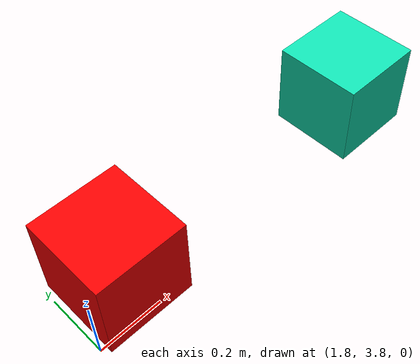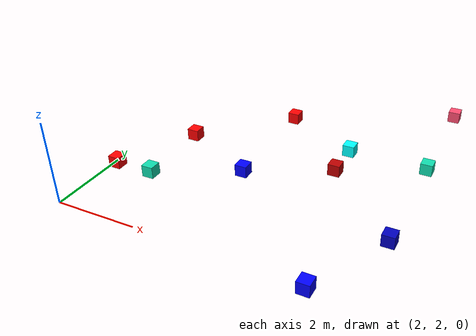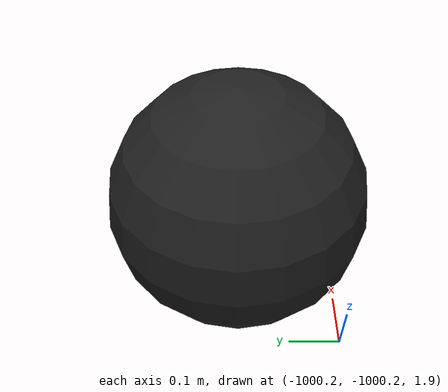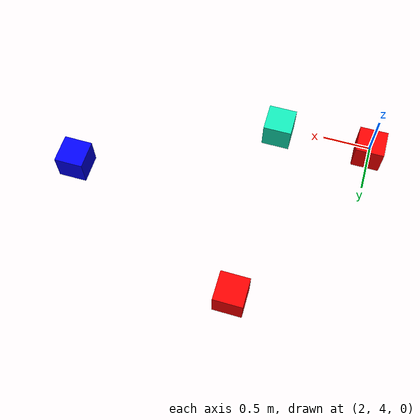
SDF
<sdf version="1.5">
 <world name="default">
  <plugin name="mrs_gazebo_static_transform_republisher_plugin" filename="libMRSGazeboStaticTransformRepublisher.so"/>
  <spherical_coordinates>
   <surface_model>EARTH_WGS84</surface_model>
   <latitude_deg>47.397743</latitude_deg>
   <longitude_deg>8.545594</longitude_deg>
   <elevation>0.0</elevation>
   <heading_deg>0</heading_deg>
  </spherical_coordinates>
  <physics name="default_physics" default="0" type="ode">
   <gravity>0 0 -9.8066</gravity>
   <ode>
    <solver>
     <type>quick</type>
     <iters>10</iters>
     <sor>1.3</sor>
     <use_dynamic_moi_rescaling>0</use_dynamic_moi_rescaling>
    </solver>
    <constraints>
     <cfm>0</cfm>
     <erp>0.2</erp>
     <contact_max_correcting_vel>1000</contact_max_correcting_vel>
     <contact_surface_layer>0.001</contact_surface_layer>
    </constraints>
   </ode>
   <max_step_size>0.004</max_step_size>
   <real_time_factor>1</real_time_factor>
   <real_time_update_rate>250</real_time_update_rate>
   <magnetic_field>6.0e-06 2.3e-05 -4.2e-05</magnetic_field>
  </physics>
  <scene><shadows>false</shadows></scene>
  <light name="sun" type="directional">
   <pose>0 0 1000 0.4 0.2 0</pose>
   <diffuse>1 1 1 1</diffuse>
   <specular>0.6 0.6 0.6 1</specular>
   <direction>0.1 0.1 -0.9</direction>
   <attenuation>
    <range>20</range>
    <constant>0.5</constant>
    <linear>0.01</linear>
    <quadratic>0.001</quadratic>
   </attenuation>
  </light>
  <model name="my_model1">
   <pose>5 5 0 0 0 0</pose>
   <static>true</static>
   <link name="link">
    <inertial>
     <mass>1.0</mass>
     <inertia><ixx>0.083</ixx><ixy>0.0</ixy><ixz>0.0</ixz><iyy>0.083</iyy><iyz>0.0</iyz><izz>0.083</izz></inertia>
    </inertial>
    <collision name="collision"><geometry><box><size>0.3 0.3 0.3</size></box></geometry></collision>
    <visual name="visual">
     <geometry><box><size>0.3 0.3 0.3</size></box></geometry>
     <material>
      <ambient>0 0 1 1</ambient>
      <diffuse>0 0 1 1</diffuse>
      <specular>0.1 0.1 0.1 1</specular>
      <emissive>0 0 0 0</emissive>
     </material>
    </visual>
   </link>
  </model>
  <model name="my_model2">
   <pose>7 7 0 0 0 0</pose>
   <static>true</static>
   <link name="link">
    <inertial>
     <mass>1.0</mass>
     <inertia><ixx>0.083</ixx><ixy>0.0</ixy><ixz>0.0</ixz><iyy>0.083</iyy><iyz>0.0</iyz><izz>0.083</izz></inertia>
    </inertial>
    <collision name="collision"><geometry><box><size>0.3 0.3 0.3</size></box></geometry></collision>
    <visual name="visual">
     <geometry><box><size>0.3 0.3 0.3</size></box></geometry>
     <material>
      <ambient>0 1 1 1</ambient>
      <diffuse>0 1 1 1</diffuse>
      <specular>0.1 0.1 0.1 1</specular>
      <emissive>0 0 0 0</emissive>
     </material>
    </visual>
   </link>
  </model>
  <model name="my_model3">
   <pose>3 4 0 0 0 0</pose>
   <static>true</static>
   <link name="link">
    <inertial>
     <mass>1.0</mass>
     <inertia><ixx>0.083</ixx><ixy>0.0</ixy><ixz>0.0</ixz><iyy>0.083</iyy><iyz>0.0</iyz><izz>0.083</izz></inertia>
    </inertial>
    <collision name="collision"><geometry><box><size>0.3 0.3 0.3</size></box></geometry></collision>
    <visual name="visual">
     <geometry><box><size>0.3 0.3 0.3</size></box></geometry>
     <material>
      <ambient>0.06 0.87 0.69 1</ambient>
      <diffuse>0.06 0.87 0.69 1</diffuse>
      <specular>0.1 0.1 0.1 1</specular>
      <emissive>0 0 0 0</emissive>
     </material>
    </visual>
   </link>
  </model>
  <model name="my_model4">
   <pose>5 8 0 0 0 0</pose>
   <static>true</static>
   <link name="link">
    <inertial>
     <mass>1.0</mass>
     <inertia><ixx>0.083</ixx><ixy>0.0</ixy><ixz>0.0</ixz><iyy>0.083</iyy><iyz>0.0</iyz><izz>0.083</izz></inertia>
    </inertial>
    <collision name="collision"><geometry><box><size>0.3 0.3 0.3</size></box></geometry></collision>
    <visual name="visual">
     <geometry><box><size>0.3 0.3 0.3</size></box></geometry>
     <material>
      <ambient>1 0 0 1</ambient>
      <diffuse>1 0 0 1</diffuse>
      <specular>0.1 0.1 0.1 1</specular>
      <emissive>0 0 0 0</emissive>
     </material>
    </visual>
   </link>
  </model>
  <model name="my_model5">
   <pose>9 10 0 0 0 0</pose>
   <static>true</static>
   <link name="link">
    <inertial>
     <mass>1.0</mass>
     <inertia><ixx>0.083</ixx><ixy>0.0</ixy><ixz>0.0</ixz><iyy>0.083</iyy><iyz>0.0</iyz><izz>0.083</izz></inertia>
    </inertial>
    <collision name="collision"><geometry><box><size>0.3 0.3 0.3</size></box></geometry></collision>
    <visual name="visual">
     <geometry><box><size>0.3 0.3 0.3</size></box></geometry>
     <material>
      <ambient>1 0.3 0.44 1</ambient>
      <diffuse>1 0.3 0.44 1</diffuse>
      <specular>0.1 0.1 0.1 1</specular>
      <emissive>0 0 0 0</emissive>
     </material>
    </visual>
   </link>
  </model>
  <model name="my_model6">
   <pose>7 6 0 0 0 0</pose>
   <static>true</static>
   <link name="link">
    <inertial>
     <mass>1.0</mass>
     <inertia><ixx>0.083</ixx><ixy>0.0</ixy><ixz>0.0</ixz><iyy>0.083</iyy><iyz>0.0</iyz><izz>0.083</izz></inertia>
    </inertial>
    <collision name="collision"><geometry><box><size>0.3 0.3 0.3</size></box></geometry></collision>
    <visual name="visual">
     <geometry><box><size>0.3 0.3 0.3</size></box></geometry>
     <material>
      <ambient>0.75 0 0 1</ambient>
      <diffuse>0.75 0 0 1</diffuse>
      <specular>0.1 0.1 0.1 1</specular>
      <emissive>0 0 0 0</emissive>
     </material>
    </visual>
   </link>
  </model>
  <model name="my_model7">
   <pose>8 2 0 0 0 0</pose>
   <static>true</static>
   <link name="link">
    <inertial>
     <mass>1.0</mass>
     <inertia><ixx>0.083</ixx><ixy>0.0</ixy><ixz>0.0</ixz><iyy>0.083</iyy><iyz>0.0</iyz><izz>0.083</izz></inertia>
    </inertial>
    <collision name="collision"><geometry><box><size>0.3 0.3 0.3</size></box></geometry></collision>
    <visual name="visual">
     <geometry><box><size>0.3 0.3 0.3</size></box></geometry>
     <material>
      <ambient>0 0 1 1</ambient>
      <diffuse>0 0 1 1</diffuse>
      <specular>0.1 0.1 0.1 1</specular>
      <emissive>0 0 0 0</emissive>
     </material>
    </visual>
   </link>
  </model>
  <model name="my_model8">
   <pose>2 4 0 0 0 0</pose>
   <static>true</static>
   <link name="link">
    <inertial>
     <mass>1.0</mass>
     <inertia><ixx>0.083</ixx><ixy>0.0</ixy><ixz>0.0</ixz><iyy>0.083</iyy><iyz>0.0</iyz><izz>0.083</izz></inertia>
    </inertial>
    <collision name="collision"><geometry><box><size>0.3 0.3 0.3</size></box></geometry></collision>
    <visual name="visual">
     <geometry><box><size>0.3 0.3 0.3</size></box></geometry>
     <material>
      <ambient>1 0 0 1</ambient>
      <diffuse>1 0 0 1</diffuse>
      <specular>0.1 0.1 0.1 1</specular>
      <emissive>0 0 0 0</emissive>
     </material>
    </visual>
   </link>
  </model>
  <model name="my_model9">
   <pose>3 6 0 0 0 0</pose>
   <static>true</static>
   <link name="link">
    <inertial>
     <mass>1.0</mass>
     <inertia><ixx>0.083</ixx><ixy>0.0</ixy><ixz>0.0</ixz><iyy>0.083</iyy><iyz>0.0</iyz><izz>0.083</izz></inertia>
    </inertial>
    <collision name="collision"><geometry><box><size>0.3 0.3 0.3</size></box></geometry></collision>
    <visual name="visual">
     <geometry><box><size>0.3 0.3 0.3</size></box></geometry>
     <material>
      <ambient>1 0 0 1</ambient>
      <diffuse>1 0 0 1</diffuse>
      <specular>0.1 0.1 0.1 1</specular>
      <emissive>0 0 0 0</emissive>
     </material>
    </visual>
   </link>
  </model>
  <model name="my_model10">
   <pose>9 7 0 0 0 0</pose>
   <static>true</static>
   <link name="link">
    <inertial>
     <mass>1.0</mass>
     <inertia><ixx>0.083</ixx><ixy>0.0</ixy><ixz>0.0</ixz><iyy>0.083</iyy><iyz>0.0</iyz><izz>0.083</izz></inertia>
    </inertial>
    <collision name="collision"><geometry><box><size>0.3 0.3 0.3</size></box></geometry></collision>
    <visual name="visual">
     <geometry><box><size>0.3 0.3 0.3</size></box></geometry>
     <material>
      <ambient>0.06 0.87 0.69 1</ambient>
      <diffuse>0.06 0.87 0.69 1</diffuse>
      <specular>0.1 0.1 0.1 1</specular>
      <emissive>0 0 0 0</emissive>
     </material>
    </visual>
   </link>
  </model>
  <model name="my_model11">
   <pose>9 4 0 0 0 0</pose>
   <static>true</static>
   <link name="link">
    <inertial>
     <mass>1.0</mass>
     <inertia><ixx>0.083</ixx><ixy>0.0</ixy><ixz>0.0</ixz><iyy>0.083</iyy><iyz>0.0</iyz><izz>0.083</izz></inertia>
    </inertial>
    <collision name="collision"><geometry><box><size>0.3 0.3 0.3</size></box></geometry></collision>
    <visual name="visual">
     <geometry><box><size>0.3 0.3 0.3</size></box></geometry>
     <material>
      <ambient>0 0 0.75 1</ambient>
      <diffuse>0 0 0.75 1</diffuse>
      <specular>0.1 0.1 0.1 1</specular>
      <emissive>0 0 0 0</emissive>
     </material>
    </visual>
   </link>
  </model>
  <model name="the_void">
   <static>1</static>
   <link name="link">
    <pose>0 0 0.1 0 -0 0</pose>
    <visual name="the_void">
     <pose>0 0 2 0 -0 0</pose>
     <geometry><sphere><radius>0.25</radius></sphere></geometry>
     <material>
      <script><uri>file://media/materials/scripts/Gazebo.material</uri><name>Gazebo/Black</name></script>
     </material>
    </visual>
   </link>
   <pose>-1000 -1000 0 0 0 0</pose>
  </model>
  <plugin name="mrs_gazebo_rviz_cam_synchronizer" filename="libMRSGazeboRvizCameraSynchronizer.so">
   <target_frame_id>gazebo_user_camera</target_frame_id>
   <world_origin_frame_id>uav1/gps_origin</world_origin_frame_id>
   <frame_to_follow>uav1</frame_to_follow>
  </plugin>
 </world>
</sdf>
